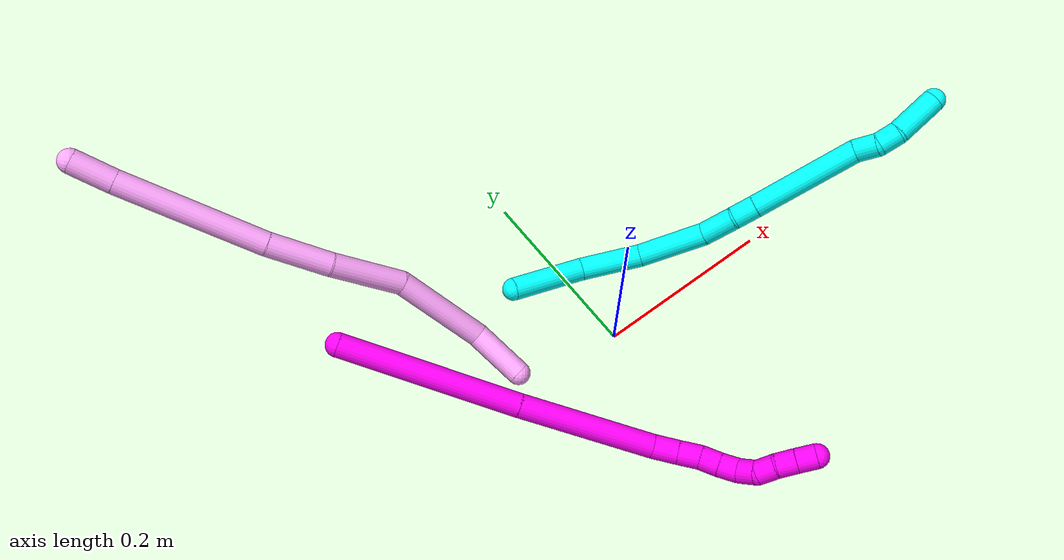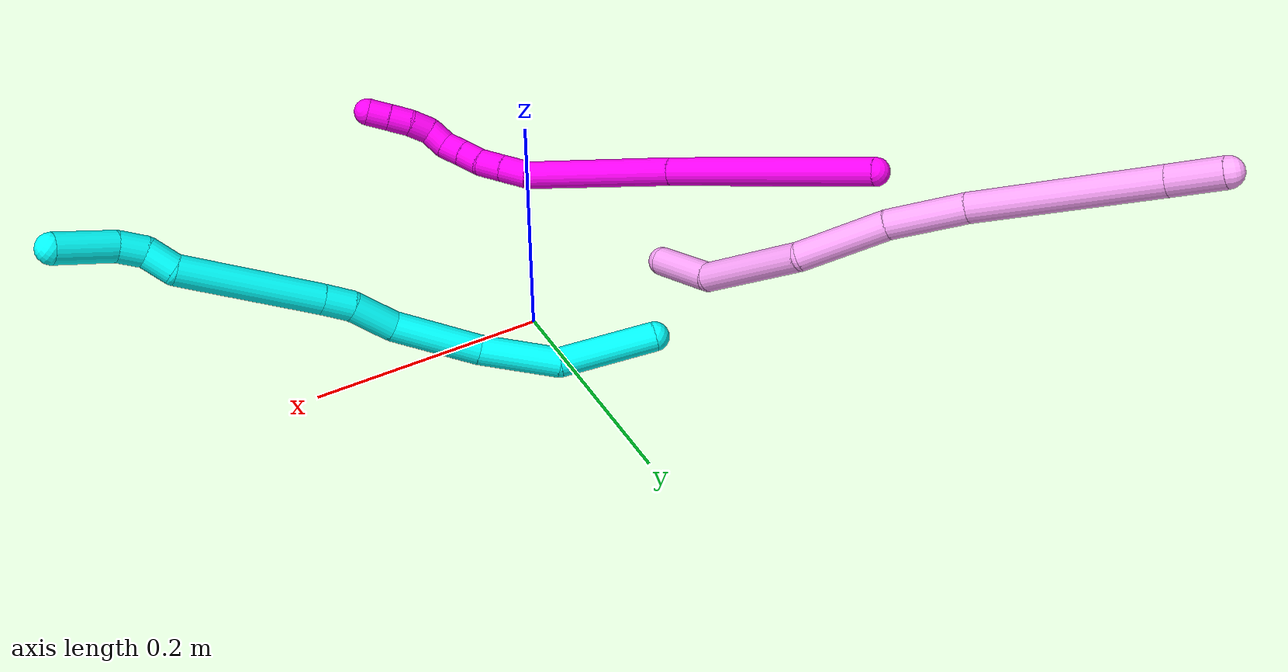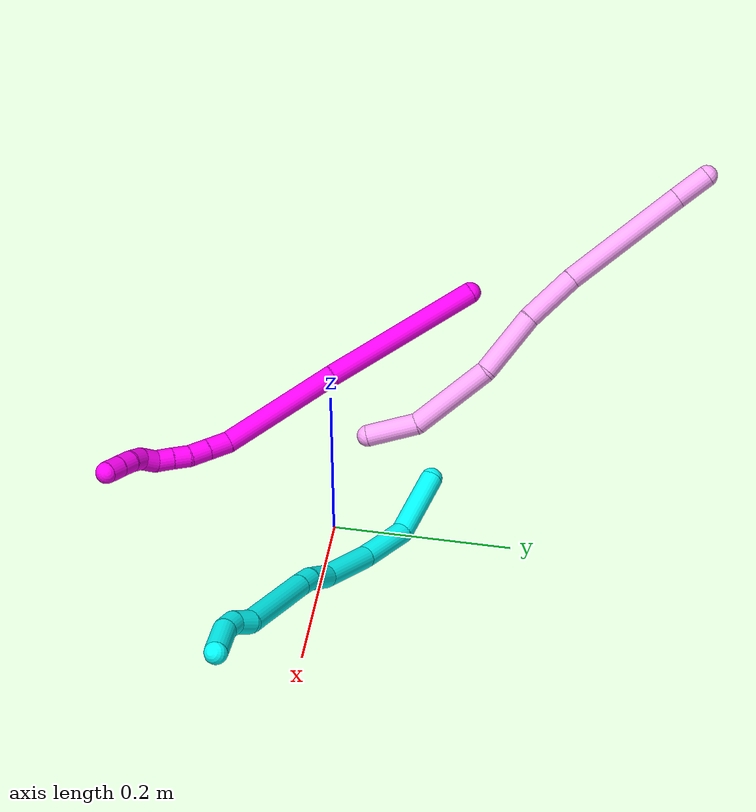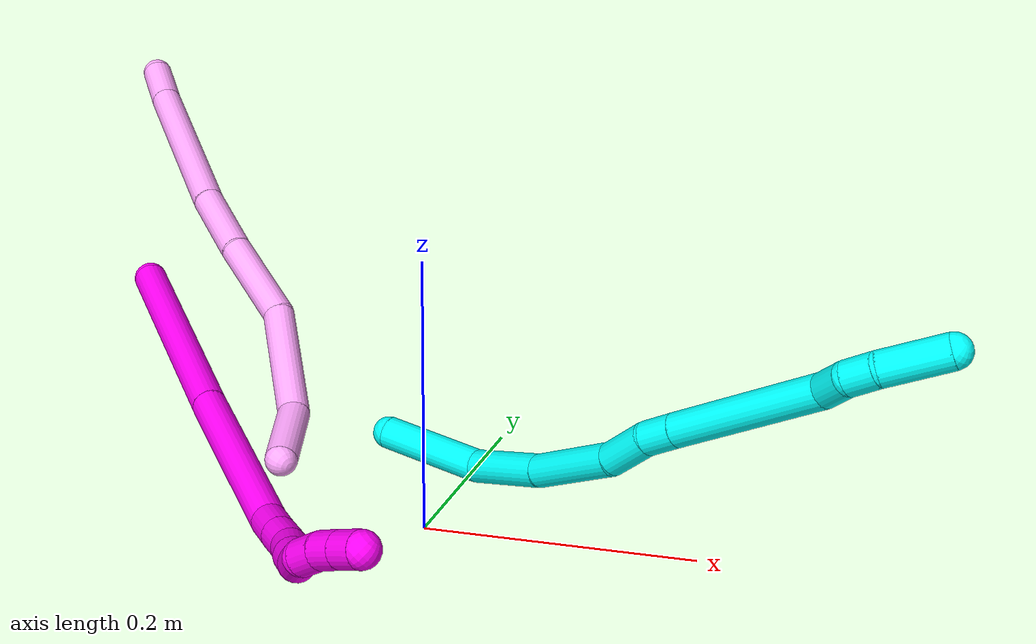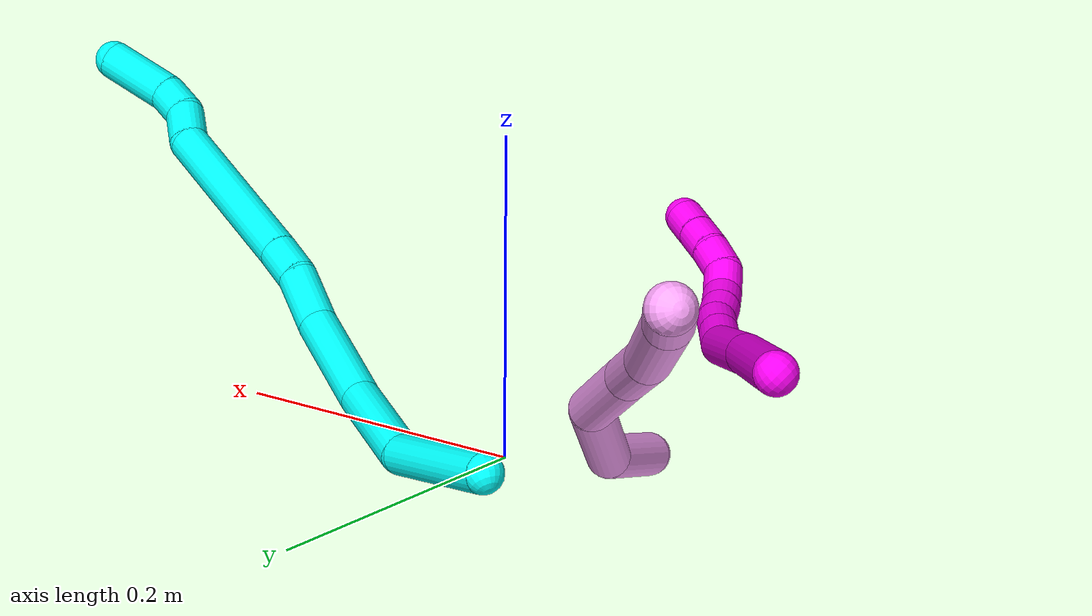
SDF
<sdf version="1.7">
 <world name="default">
  <model name="3">
   <static>0</static>
   <link name="3">
    <collision name="collision-cylinder-e_1_1_4">
     <pose>0.031572 -0.008152 0.024645 0.319455 0.882654 0.151915</pose>
     <geometry><cylinder><radius>0.0125</radius><length>0.081747</length></cylinder></geometry>
     <surface>
      <friction><ode><mu>1.16</mu><mu2>1.16</mu2><slip1>0</slip1><slip2>0</slip2></ode></friction>
      <contact><ode><kp>1e+06</kp><kd>1</kd><max_vel>0</max_vel><min_depth>0.001</min_depth></ode></contact>
     </surface>
    </collision>
    <visual name="visual-cylinder-e_1_1_4">
     <pose>0.031572 -0.008152 0.024645 0.319455 0.882654 0.151915</pose>
     <geometry><cylinder><radius>0.0125</radius><length>0.081747</length></cylinder></geometry>
     <material><ambient>0.003922 1 0.996078 1</ambient></material>
    </visual>
    <collision name="collision-cylinder-e_2_4_5">
     <pose>0.077993 -0.026157 0.077841 0.332303 0.456971 0.077955</pose>
     <geometry><cylinder><radius>0.0125</radius><length>0.067313</length></cylinder></geometry>
     <surface>
      <friction><ode><mu>1.16</mu><mu2>1.16</mu2><slip1>0</slip1><slip2>0</slip2></ode></friction>
      <contact><ode><kp>1e+06</kp><kd>1</kd><max_vel>0</max_vel><min_depth>0.001</min_depth></ode></contact>
     </surface>
    </collision>
    <visual name="visual-cylinder-e_2_4_5">
     <pose>0.077993 -0.026157 0.077841 0.332303 0.456971 0.077955</pose>
     <geometry><cylinder><radius>0.0125</radius><length>0.067313</length></cylinder></geometry>
     <material><ambient>0.003922 1 0.996078 1</ambient></material>
    </visual>
    <collision name="collision-cylinder-e_3_5_6">
     <pose>0.104804 -0.04343 0.140464 0.21441 0.330417 0.035882</pose>
     <geometry><cylinder><radius>0.0125</radius><length>0.073729</length></cylinder></geometry>
     <surface>
      <friction><ode><mu>1.16</mu><mu2>1.16</mu2><slip1>0</slip1><slip2>0</slip2></ode></friction>
      <contact><ode><kp>1e+06</kp><kd>1</kd><max_vel>0</max_vel><min_depth>0.001</min_depth></ode></contact>
     </surface>
    </collision>
    <visual name="visual-cylinder-e_3_5_6">
     <pose>0.104804 -0.04343 0.140464 0.21441 0.330417 0.035882</pose>
     <geometry><cylinder><radius>0.0125</radius><length>0.073729</length></cylinder></geometry>
     <material><ambient>0.003922 1 0.996078 1</ambient></material>
    </visual>
    <collision name="collision-cylinder-e_4_6_7">
     <pose>0.118986 -0.051714 0.19339 0.045854 0.117169 0.00269</pose>
     <geometry><cylinder><radius>0.0125</radius><length>0.03801</length></cylinder></geometry>
     <surface>
      <friction><ode><mu>1.16</mu><mu2>1.16</mu2><slip1>0</slip1><slip2>0</slip2></ode></friction>
      <contact><ode><kp>1e+06</kp><kd>1</kd><max_vel>0</max_vel><min_depth>0.001</min_depth></ode></contact>
     </surface>
    </collision>
    <visual name="visual-cylinder-e_4_6_7">
     <pose>0.118986 -0.051714 0.19339 0.045854 0.117169 0.00269</pose>
     <geometry><cylinder><radius>0.0125</radius><length>0.03801</length></cylinder></geometry>
     <material><ambient>0.003922 1 0.996078 1</ambient></material>
    </visual>
    <collision name="collision-cylinder-e_5_7_8">
     <pose>0.125436 -0.053005 0.224115 0.035846 0.34202 0.006191</pose>
     <geometry><cylinder><radius>0.0125</radius><length>0.025216</length></cylinder></geometry>
     <surface>
      <friction><ode><mu>1.16</mu><mu2>1.16</mu2><slip1>0</slip1><slip2>0</slip2></ode></friction>
      <contact><ode><kp>1e+06</kp><kd>1</kd><max_vel>0</max_vel><min_depth>0.001</min_depth></ode></contact>
     </surface>
    </collision>
    <visual name="visual-cylinder-e_5_7_8">
     <pose>0.125436 -0.053005 0.224115 0.035846 0.34202 0.006191</pose>
     <geometry><cylinder><radius>0.0125</radius><length>0.025216</length></cylinder></geometry>
     <material><ambient>0.003922 1 0.996078 1</ambient></material>
    </visual>
    <collision name="collision-cylinder-e_6_8_9">
     <pose>0.150831 -0.054583 0.290786 0.021025 0.368515 0.003919</pose>
     <geometry><cylinder><radius>0.0125</radius><length>0.117515</length></cylinder></geometry>
     <surface>
      <friction><ode><mu>1.16</mu><mu2>1.16</mu2><slip1>0</slip1><slip2>0</slip2></ode></friction>
      <contact><ode><kp>1e+06</kp><kd>1</kd><max_vel>0</max_vel><min_depth>0.001</min_depth></ode></contact>
     </surface>
    </collision>
    <visual name="visual-cylinder-e_6_8_9">
     <pose>0.150831 -0.054583 0.290786 0.021025 0.368515 0.003919</pose>
     <geometry><cylinder><radius>0.0125</radius><length>0.117515</length></cylinder></geometry>
     <material><ambient>0.003922 1 0.996078 1</ambient></material>
    </visual>
    <collision name="collision-cylinder-e_7_9_10">
     <pose>0.172494 -0.059099 0.357721 0.270379 0.039473 0.00537</pose>
     <geometry><cylinder><radius>0.0125</radius><length>0.025204</length></cylinder></geometry>
     <surface>
      <friction><ode><mu>1.16</mu><mu2>1.16</mu2><slip1>0</slip1><slip2>0</slip2></ode></friction>
      <contact><ode><kp>1e+06</kp><kd>1</kd><max_vel>0</max_vel><min_depth>0.001</min_depth></ode></contact>
     </surface>
    </collision>
    <visual name="visual-cylinder-e_7_9_10">
     <pose>0.172494 -0.059099 0.357721 0.270379 0.039473 0.00537</pose>
     <geometry><cylinder><radius>0.0125</radius><length>0.025204</length></cylinder></geometry>
     <material><ambient>0.003922 1 0.996078 1</ambient></material>
    </visual>
    <collision name="collision-cylinder-e_8_10_11">
     <pose>0.177081 -0.062178 0.380353 -0.027027 0.371299 -0.005076</pose>
     <geometry><cylinder><radius>0.0125</radius><length>0.022539</length></cylinder></geometry>
     <surface>
      <friction><ode><mu>1.16</mu><mu2>1.16</mu2><slip1>0</slip1><slip2>0</slip2></ode></friction>
      <contact><ode><kp>1e+06</kp><kd>1</kd><max_vel>0</max_vel><min_depth>0.001</min_depth></ode></contact>
     </surface>
    </collision>
    <visual name="visual-cylinder-e_8_10_11">
     <pose>0.177081 -0.062178 0.380353 -0.027027 0.371299 -0.005076</pose>
     <geometry><cylinder><radius>0.0125</radius><length>0.022539</length></cylinder></geometry>
     <material><ambient>0.003922 1 0.996078 1</ambient></material>
    </visual>
    <collision name="collision-cylinder-e_9_11_2">
     <pose>0.193591 -0.056417 0.411083 -0.264384 0.534991 -0.072851</pose>
     <geometry><cylinder><radius>0.0125</radius><length>0.048729</length></cylinder></geometry>
     <surface>
      <friction><ode><mu>1.16</mu><mu2>1.16</mu2><slip1>0</slip1><slip2>0</slip2></ode></friction>
      <contact><ode><kp>1e+06</kp><kd>1</kd><max_vel>0</max_vel><min_depth>0.001</min_depth></ode></contact>
     </surface>
    </collision>
    <visual name="visual-cylinder-e_9_11_2">
     <pose>0.193591 -0.056417 0.411083 -0.264384 0.534991 -0.072851</pose>
     <geometry><cylinder><radius>0.0125</radius><length>0.048729</length></cylinder></geometry>
     <material><ambient>0.003922 1 0.996078 1</ambient></material>
    </visual>
    <collision name="collision-sphere-2">
     <pose>0.206013 -0.05094 0.431315 0 -0 0</pose>
     <geometry><sphere><radius>0.0125</radius></sphere></geometry>
     <surface>
      <friction><ode><mu>1.16</mu><mu2>1.16</mu2><slip1>0</slip1><slip2>0</slip2></ode></friction>
      <contact><ode><kp>1e+06</kp><kd>1</kd><max_vel>0</max_vel><min_depth>0.001</min_depth></ode></contact>
     </surface>
    </collision>
    <visual name="visual-sphere-2">
     <pose>0.206013 -0.05094 0.431315 0 -0 0</pose>
     <geometry><sphere><radius>0.0125</radius></sphere></geometry>
     <material><ambient>0.003922 1 0.996078 1</ambient></material>
    </visual>
    <collision name="collision-sphere-11">
     <pose>0.181169 -0.061894 0.390851 0 -0 0</pose>
     <geometry><sphere><radius>0.0125</radius></sphere></geometry>
     <surface>
      <friction><ode><mu>1.16</mu><mu2>1.16</mu2><slip1>0</slip1><slip2>0</slip2></ode></friction>
      <contact><ode><kp>1e+06</kp><kd>1</kd><max_vel>0</max_vel><min_depth>0.001</min_depth></ode></contact>
     </surface>
    </collision>
    <visual name="visual-sphere-11">
     <pose>0.181169 -0.061894 0.390851 0 -0 0</pose>
     <geometry><sphere><radius>0.0125</radius></sphere></geometry>
     <material><ambient>0.003922 1 0.996078 1</ambient></material>
    </visual>
    <collision name="collision-sphere-10">
     <pose>0.172992 -0.062462 0.369855 0 -0 0</pose>
     <geometry><sphere><radius>0.0125</radius></sphere></geometry>
     <surface>
      <friction><ode><mu>1.16</mu><mu2>1.16</mu2><slip1>0</slip1><slip2>0</slip2></ode></friction>
      <contact><ode><kp>1e+06</kp><kd>1</kd><max_vel>0</max_vel><min_depth>0.001</min_depth></ode></contact>
     </surface>
    </collision>
    <visual name="visual-sphere-10">
     <pose>0.172992 -0.062462 0.369855 0 -0 0</pose>
     <geometry><sphere><radius>0.0125</radius></sphere></geometry>
     <material><ambient>0.003922 1 0.996078 1</ambient></material>
    </visual>
    <collision name="collision-sphere-9">
     <pose>0.171997 -0.055735 0.345586 0 -0 0</pose>
     <geometry><sphere><radius>0.0125</radius></sphere></geometry>
     <surface>
      <friction><ode><mu>1.16</mu><mu2>1.16</mu2><slip1>0</slip1><slip2>0</slip2></ode></friction>
      <contact><ode><kp>1e+06</kp><kd>1</kd><max_vel>0</max_vel><min_depth>0.001</min_depth></ode></contact>
     </surface>
    </collision>
    <visual name="visual-sphere-9">
     <pose>0.171997 -0.055735 0.345586 0 -0 0</pose>
     <geometry><sphere><radius>0.0125</radius></sphere></geometry>
     <material><ambient>0.003922 1 0.996078 1</ambient></material>
    </visual>
    <collision name="collision-sphere-4">
     <pose>0.063143 -0.016305 0.049291 0 -0 0</pose>
     <geometry><sphere><radius>0.0125</radius></sphere></geometry>
     <surface>
      <friction><ode><mu>1.16</mu><mu2>1.16</mu2><slip1>0</slip1><slip2>0</slip2></ode></friction>
      <contact><ode><kp>1e+06</kp><kd>1</kd><max_vel>0</max_vel><min_depth>0.001</min_depth></ode></contact>
     </surface>
    </collision>
    <visual name="visual-sphere-4">
     <pose>0.063143 -0.016305 0.049291 0 -0 0</pose>
     <geometry><sphere><radius>0.0125</radius></sphere></geometry>
     <material><ambient>0.003922 1 0.996078 1</ambient></material>
    </visual>
    <collision name="collision-sphere-1">
     <geometry><sphere><radius>0.0125</radius></sphere></geometry>
     <surface>
      <friction><ode><mu>1.16</mu><mu2>1.16</mu2><slip1>0</slip1><slip2>0</slip2></ode></friction>
      <contact><ode><kp>1e+06</kp><kd>1</kd><max_vel>0</max_vel><min_depth>0.001</min_depth></ode></contact>
     </surface>
    </collision>
    <visual name="visual-sphere-1">
     <geometry><sphere><radius>0.0125</radius></sphere></geometry>
     <material><ambient>0.003922 1 0.996078 1</ambient></material>
    </visual>
    <collision name="collision-sphere-8">
     <pose>0.129665 -0.053431 0.235985 0 -0 0</pose>
     <geometry><sphere><radius>0.0125</radius></sphere></geometry>
     <surface>
      <friction><ode><mu>1.16</mu><mu2>1.16</mu2><slip1>0</slip1><slip2>0</slip2></ode></friction>
      <contact><ode><kp>1e+06</kp><kd>1</kd><max_vel>0</max_vel><min_depth>0.001</min_depth></ode></contact>
     </surface>
    </collision>
    <visual name="visual-sphere-8">
     <pose>0.129665 -0.053431 0.235985 0 -0 0</pose>
     <geometry><sphere><radius>0.0125</radius></sphere></geometry>
     <material><ambient>0.003922 1 0.996078 1</ambient></material>
    </visual>
    <collision name="collision-sphere-5">
     <pose>0.092844 -0.03601 0.106392 0 -0 0</pose>
     <geometry><sphere><radius>0.0125</radius></sphere></geometry>
     <surface>
      <friction><ode><mu>1.16</mu><mu2>1.16</mu2><slip1>0</slip1><slip2>0</slip2></ode></friction>
      <contact><ode><kp>1e+06</kp><kd>1</kd><max_vel>0</max_vel><min_depth>0.001</min_depth></ode></contact>
     </surface>
    </collision>
    <visual name="visual-sphere-5">
     <pose>0.092844 -0.03601 0.106392 0 -0 0</pose>
     <geometry><sphere><radius>0.0125</radius></sphere></geometry>
     <material><ambient>0.003922 1 0.996078 1</ambient></material>
    </visual>
    <collision name="collision-sphere-6">
     <pose>0.116764 -0.050849 0.174536 0 -0 0</pose>
     <geometry><sphere><radius>0.0125</radius></sphere></geometry>
     <surface>
      <friction><ode><mu>1.16</mu><mu2>1.16</mu2><slip1>0</slip1><slip2>0</slip2></ode></friction>
      <contact><ode><kp>1e+06</kp><kd>1</kd><max_vel>0</max_vel><min_depth>0.001</min_depth></ode></contact>
     </surface>
    </collision>
    <visual name="visual-sphere-6">
     <pose>0.116764 -0.050849 0.174536 0 -0 0</pose>
     <geometry><sphere><radius>0.0125</radius></sphere></geometry>
     <material><ambient>0.003922 1 0.996078 1</ambient></material>
    </visual>
    <collision name="collision-sphere-7">
     <pose>0.121207 -0.052579 0.212245 0 -0 0</pose>
     <geometry><sphere><radius>0.0125</radius></sphere></geometry>
     <surface>
      <friction><ode><mu>1.16</mu><mu2>1.16</mu2><slip1>0</slip1><slip2>0</slip2></ode></friction>
      <contact><ode><kp>1e+06</kp><kd>1</kd><max_vel>0</max_vel><min_depth>0.001</min_depth></ode></contact>
     </surface>
    </collision>
    <visual name="visual-sphere-7">
     <pose>0.121207 -0.052579 0.212245 0 -0 0</pose>
     <geometry><sphere><radius>0.0125</radius></sphere></geometry>
     <material><ambient>0.003922 1 0.996078 1</ambient></material>
    </visual>
    <inertial>
     <pose>0.117481 -0.041972 0.204809 0 -0 0</pose>
     <mass>0.5</mass>
     <inertia><ixx>0.000266</ixx><ixy>0</ixy><ixz>0</ixz><iyy>0.000277</iyy><iyz>0</iyz><izz>-6e-05</izz></inertia>
    </inertial>
   </link>
   <pose>-0.062296 0.100604 0.031944 0.449055 0.687224 0.198277</pose>
  </model>
  <model name="4">
   <static>0</static>
   <link name="4">
    <collision name="collision-cylinder-e_1_1_4">
     <pose>-0.002005 0.020645 0.021271 -0.770472 -0.067534 0.027393</pose>
     <geometry><cylinder><radius>0.0125</radius><length>0.059421</length></cylinder></geometry>
     <surface>
      <friction><ode><mu>1.16</mu><mu2>1.16</mu2><slip1>0</slip1><slip2>0</slip2></ode></friction>
      <contact><ode><kp>1e+06</kp><kd>1</kd><max_vel>0</max_vel><min_depth>0.001</min_depth></ode></contact>
     </surface>
    </collision>
    <visual name="visual-cylinder-e_1_1_4">
     <pose>-0.002005 0.020645 0.021271 -0.770472 -0.067534 0.027393</pose>
     <geometry><cylinder><radius>0.0125</radius><length>0.059421</length></cylinder></geometry>
     <material><ambient>1 0.65098 0.996078 1</ambient></material>
    </visual>
    <collision name="collision-cylinder-e_2_4_5">
     <pose>0.008815 0.065106 0.084631 -0.514916 0.259232 -0.068614</pose>
     <geometry><cylinder><radius>0.0125</radius><length>0.100062</length></cylinder></geometry>
     <surface>
      <friction><ode><mu>1.16</mu><mu2>1.16</mu2><slip1>0</slip1><slip2>0</slip2></ode></friction>
      <contact><ode><kp>1e+06</kp><kd>1</kd><max_vel>0</max_vel><min_depth>0.001</min_depth></ode></contact>
     </surface>
    </collision>
    <visual name="visual-cylinder-e_2_4_5">
     <pose>0.008815 0.065106 0.084631 -0.514916 0.259232 -0.068614</pose>
     <geometry><cylinder><radius>0.0125</radius><length>0.100062</length></cylinder></geometry>
     <material><ambient>1 0.65098 0.996078 1</ambient></material>
    </visual>
    <collision name="collision-cylinder-e_3_5_6">
     <pose>0.031572 0.094783 0.163992 -0.15601 0.257395 -0.02023</pose>
     <geometry><cylinder><radius>0.0125</radius><length>0.078032</length></cylinder></geometry>
     <surface>
      <friction><ode><mu>1.16</mu><mu2>1.16</mu2><slip1>0</slip1><slip2>0</slip2></ode></friction>
      <contact><ode><kp>1e+06</kp><kd>1</kd><max_vel>0</max_vel><min_depth>0.001</min_depth></ode></contact>
     </surface>
    </collision>
    <visual name="visual-cylinder-e_3_5_6">
     <pose>0.031572 0.094783 0.163992 -0.15601 0.257395 -0.02023</pose>
     <geometry><cylinder><radius>0.0125</radius><length>0.078032</length></cylinder></geometry>
     <material><ambient>1 0.65098 0.996078 1</ambient></material>
    </visual>
    <collision name="collision-cylinder-e_4_6_7">
     <pose>0.046343 0.10873 0.233147 -0.24834 0.146069 -0.018263</pose>
     <geometry><cylinder><radius>0.0125</radius><length>0.066489</length></cylinder></geometry>
     <surface>
      <friction><ode><mu>1.16</mu><mu2>1.16</mu2><slip1>0</slip1><slip2>0</slip2></ode></friction>
      <contact><ode><kp>1e+06</kp><kd>1</kd><max_vel>0</max_vel><min_depth>0.001</min_depth></ode></contact>
     </surface>
    </collision>
    <visual name="visual-cylinder-e_4_6_7">
     <pose>0.046343 0.10873 0.233147 -0.24834 0.146069 -0.018263</pose>
     <geometry><cylinder><radius>0.0125</radius><length>0.066489</length></cylinder></geometry>
     <material><ambient>1 0.65098 0.996078 1</ambient></material>
    </visual>
    <collision name="collision-cylinder-e_5_7_8">
     <pose>0.059466 0.142417 0.336589 -0.343578 0.108568 -0.018854</pose>
     <geometry><cylinder><radius>0.0125</radius><length>0.152907</length></cylinder></geometry>
     <surface>
      <friction><ode><mu>1.16</mu><mu2>1.16</mu2><slip1>0</slip1><slip2>0</slip2></ode></friction>
      <contact><ode><kp>1e+06</kp><kd>1</kd><max_vel>0</max_vel><min_depth>0.001</min_depth></ode></contact>
     </surface>
    </collision>
    <visual name="visual-cylinder-e_5_7_8">
     <pose>0.059466 0.142417 0.336589 -0.343578 0.108568 -0.018854</pose>
     <geometry><cylinder><radius>0.0125</radius><length>0.152907</length></cylinder></geometry>
     <material><ambient>1 0.65098 0.996078 1</ambient></material>
    </visual>
    <collision name="collision-cylinder-e_6_8_2">
     <pose>0.07055 0.176134 0.427911 -0.389639 0.130329 -0.025752</pose>
     <geometry><cylinder><radius>0.0125</radius><length>0.043089</length></cylinder></geometry>
     <surface>
      <friction><ode><mu>1.16</mu><mu2>1.16</mu2><slip1>0</slip1><slip2>0</slip2></ode></friction>
      <contact><ode><kp>1e+06</kp><kd>1</kd><max_vel>0</max_vel><min_depth>0.001</min_depth></ode></contact>
     </surface>
    </collision>
    <visual name="visual-cylinder-e_6_8_2">
     <pose>0.07055 0.176134 0.427911 -0.389639 0.130329 -0.025752</pose>
     <geometry><cylinder><radius>0.0125</radius><length>0.043089</length></cylinder></geometry>
     <material><ambient>1 0.65098 0.996078 1</ambient></material>
    </visual>
    <collision name="collision-sphere-2">
     <pose>0.07335 0.184248 0.447672 0 -0 0</pose>
     <geometry><sphere><radius>0.0125</radius></sphere></geometry>
     <surface>
      <friction><ode><mu>1.16</mu><mu2>1.16</mu2><slip1>0</slip1><slip2>0</slip2></ode></friction>
      <contact><ode><kp>1e+06</kp><kd>1</kd><max_vel>0</max_vel><min_depth>0.001</min_depth></ode></contact>
     </surface>
    </collision>
    <visual name="visual-sphere-2">
     <pose>0.07335 0.184248 0.447672 0 -0 0</pose>
     <geometry><sphere><radius>0.0125</radius></sphere></geometry>
     <material><ambient>1 0.65098 0.996078 1</ambient></material>
    </visual>
    <collision name="collision-sphere-4">
     <pose>-0.00401 0.041291 0.042542 0 -0 0</pose>
     <geometry><sphere><radius>0.0125</radius></sphere></geometry>
     <surface>
      <friction><ode><mu>1.16</mu><mu2>1.16</mu2><slip1>0</slip1><slip2>0</slip2></ode></friction>
      <contact><ode><kp>1e+06</kp><kd>1</kd><max_vel>0</max_vel><min_depth>0.001</min_depth></ode></contact>
     </surface>
    </collision>
    <visual name="visual-sphere-4">
     <pose>-0.00401 0.041291 0.042542 0 -0 0</pose>
     <geometry><sphere><radius>0.0125</radius></sphere></geometry>
     <material><ambient>1 0.65098 0.996078 1</ambient></material>
    </visual>
    <collision name="collision-sphere-1">
     <geometry><sphere><radius>0.0125</radius></sphere></geometry>
     <surface>
      <friction><ode><mu>1.16</mu><mu2>1.16</mu2><slip1>0</slip1><slip2>0</slip2></ode></friction>
      <contact><ode><kp>1e+06</kp><kd>1</kd><max_vel>0</max_vel><min_depth>0.001</min_depth></ode></contact>
     </surface>
    </collision>
    <visual name="visual-sphere-1">
     <geometry><sphere><radius>0.0125</radius></sphere></geometry>
     <material><ambient>1 0.65098 0.996078 1</ambient></material>
    </visual>
    <collision name="collision-sphere-8">
     <pose>0.06775 0.168019 0.40815 0 -0 0</pose>
     <geometry><sphere><radius>0.0125</radius></sphere></geometry>
     <surface>
      <friction><ode><mu>1.16</mu><mu2>1.16</mu2><slip1>0</slip1><slip2>0</slip2></ode></friction>
      <contact><ode><kp>1e+06</kp><kd>1</kd><max_vel>0</max_vel><min_depth>0.001</min_depth></ode></contact>
     </surface>
    </collision>
    <visual name="visual-sphere-8">
     <pose>0.06775 0.168019 0.40815 0 -0 0</pose>
     <geometry><sphere><radius>0.0125</radius></sphere></geometry>
     <material><ambient>1 0.65098 0.996078 1</ambient></material>
    </visual>
    <collision name="collision-sphere-5">
     <pose>0.02164 0.088921 0.12672 0 -0 0</pose>
     <geometry><sphere><radius>0.0125</radius></sphere></geometry>
     <surface>
      <friction><ode><mu>1.16</mu><mu2>1.16</mu2><slip1>0</slip1><slip2>0</slip2></ode></friction>
      <contact><ode><kp>1e+06</kp><kd>1</kd><max_vel>0</max_vel><min_depth>0.001</min_depth></ode></contact>
     </surface>
    </collision>
    <visual name="visual-sphere-5">
     <pose>0.02164 0.088921 0.12672 0 -0 0</pose>
     <geometry><sphere><radius>0.0125</radius></sphere></geometry>
     <material><ambient>1 0.65098 0.996078 1</ambient></material>
    </visual>
    <collision name="collision-sphere-6">
     <pose>0.041504 0.100646 0.201265 0 -0 0</pose>
     <geometry><sphere><radius>0.0125</radius></sphere></geometry>
     <surface>
      <friction><ode><mu>1.16</mu><mu2>1.16</mu2><slip1>0</slip1><slip2>0</slip2></ode></friction>
      <contact><ode><kp>1e+06</kp><kd>1</kd><max_vel>0</max_vel><min_depth>0.001</min_depth></ode></contact>
     </surface>
    </collision>
    <visual name="visual-sphere-6">
     <pose>0.041504 0.100646 0.201265 0 -0 0</pose>
     <geometry><sphere><radius>0.0125</radius></sphere></geometry>
     <material><ambient>1 0.65098 0.996078 1</ambient></material>
    </visual>
    <collision name="collision-sphere-7">
     <pose>0.051182 0.116815 0.265028 0 -0 0</pose>
     <geometry><sphere><radius>0.0125</radius></sphere></geometry>
     <surface>
      <friction><ode><mu>1.16</mu><mu2>1.16</mu2><slip1>0</slip1><slip2>0</slip2></ode></friction>
      <contact><ode><kp>1e+06</kp><kd>1</kd><max_vel>0</max_vel><min_depth>0.001</min_depth></ode></contact>
     </surface>
    </collision>
    <visual name="visual-sphere-7">
     <pose>0.051182 0.116815 0.265028 0 -0 0</pose>
     <geometry><sphere><radius>0.0125</radius></sphere></geometry>
     <material><ambient>1 0.65098 0.996078 1</ambient></material>
    </visual>
    <inertial>
     <pose>0.036881 0.103466 0.215871 0 -0 0</pose>
     <mass>0.5</mass>
     <inertia>
      <ixx>0.000476</ixx>
      <ixy>0</ixy>
      <ixz>0</ixz>
      <iyy>0.000455</iyy>
      <iyz>0</iyz>
      <izz>-0.000208</izz>
     </inertia>
    </inertial>
   </link>
   <pose>-0.118511 0.01774 0.033125 0.788536 -1.22488 -1.37618</pose>
  </model>
  <model name="10">
   <static>0</static>
   <link name="10">
    <collision name="collision-cylinder-e_1_1_4">
     <pose>0.091506 -0.021646 -0.001994 1.66266 1.33756 1.4279</pose>
     <geometry><cylinder><radius>0.0125</radius><length>0.188105</length></cylinder></geometry>
     <surface>
      <friction><ode><mu>1.16</mu><mu2>1.16</mu2><slip1>0</slip1><slip2>0</slip2></ode></friction>
      <contact><ode><kp>1e+06</kp><kd>1</kd><max_vel>0</max_vel><min_depth>0.001</min_depth></ode></contact>
     </surface>
    </collision>
    <visual name="visual-cylinder-e_1_1_4">
     <pose>0.091506 -0.021646 -0.001994 1.66266 1.33756 1.4279</pose>
     <geometry><cylinder><radius>0.0125</radius><length>0.188105</length></cylinder></geometry>
     <material><ambient>1 0 0.964706 1</ambient></material>
    </visual>
    <collision name="collision-cylinder-e_2_4_5">
     <pose>0.252749 -0.057656 -0.004463 1.60381 1.36756 1.4</pose>
     <geometry><cylinder><radius>0.0125</radius><length>0.142405</length></cylinder></geometry>
     <surface>
      <friction><ode><mu>1.16</mu><mu2>1.16</mu2><slip1>0</slip1><slip2>0</slip2></ode></friction>
      <contact><ode><kp>1e+06</kp><kd>1</kd><max_vel>0</max_vel><min_depth>0.001</min_depth></ode></contact>
     </surface>
    </collision>
    <visual name="visual-cylinder-e_2_4_5">
     <pose>0.252749 -0.057656 -0.004463 1.60381 1.36756 1.4</pose>
     <geometry><cylinder><radius>0.0125</radius><length>0.142405</length></cylinder></geometry>
     <material><ambient>1 0 0.964706 1</ambient></material>
    </visual>
    <collision name="collision-cylinder-e_3_5_6">
     <pose>0.334213 -0.077459 -0.002852 1.20481 1.10976 0.805849</pose>
     <geometry><cylinder><radius>0.0125</radius><length>0.026188</length></cylinder></geometry>
     <surface>
      <friction><ode><mu>1.16</mu><mu2>1.16</mu2><slip1>0</slip1><slip2>0</slip2></ode></friction>
      <contact><ode><kp>1e+06</kp><kd>1</kd><max_vel>0</max_vel><min_depth>0.001</min_depth></ode></contact>
     </surface>
    </collision>
    <visual name="visual-cylinder-e_3_5_6">
     <pose>0.334213 -0.077459 -0.002852 1.20481 1.10976 0.805849</pose>
     <geometry><cylinder><radius>0.0125</radius><length>0.026188</length></cylinder></geometry>
     <material><ambient>1 0 0.964706 1</ambient></material>
    </visual>
    <collision name="collision-cylinder-e_4_6_7">
     <pose>0.35623 -0.087732 0.001363 1.15565 1.09654 0.757965</pose>
     <geometry><cylinder><radius>0.0125</radius><length>0.023134</length></cylinder></geometry>
     <surface>
      <friction><ode><mu>1.16</mu><mu2>1.16</mu2><slip1>0</slip1><slip2>0</slip2></ode></friction>
      <contact><ode><kp>1e+06</kp><kd>1</kd><max_vel>0</max_vel><min_depth>0.001</min_depth></ode></contact>
     </surface>
    </collision>
    <visual name="visual-cylinder-e_4_6_7">
     <pose>0.35623 -0.087732 0.001363 1.15565 1.09654 0.757965</pose>
     <geometry><cylinder><radius>0.0125</radius><length>0.023134</length></cylinder></geometry>
     <material><ambient>1 0 0.964706 1</ambient></material>
    </visual>
    <collision name="collision-cylinder-e_5_7_8">
     <pose>0.374578 -0.098512 0.004435 1.41375 0.929184 0.808924</pose>
     <geometry><cylinder><radius>0.0125</radius><length>0.020118</length></cylinder></geometry>
     <surface>
      <friction><ode><mu>1.16</mu><mu2>1.16</mu2><slip1>0</slip1><slip2>0</slip2></ode></friction>
      <contact><ode><kp>1e+06</kp><kd>1</kd><max_vel>0</max_vel><min_depth>0.001</min_depth></ode></contact>
     </surface>
    </collision>
    <visual name="visual-cylinder-e_5_7_8">
     <pose>0.374578 -0.098512 0.004435 1.41375 0.929184 0.808924</pose>
     <geometry><cylinder><radius>0.0125</radius><length>0.020118</length></cylinder></geometry>
     <material><ambient>1 0 0.964706 1</ambient></material>
    </visual>
    <collision name="collision-cylinder-e_6_8_9">
     <pose>0.390747 -0.110086 0.007056 1.2808 0.94401 0.726996</pose>
     <geometry><cylinder><radius>0.0125</radius><length>0.020027</length></cylinder></geometry>
     <surface>
      <friction><ode><mu>1.16</mu><mu2>1.16</mu2><slip1>0</slip1><slip2>0</slip2></ode></friction>
      <contact><ode><kp>1e+06</kp><kd>1</kd><max_vel>0</max_vel><min_depth>0.001</min_depth></ode></contact>
     </surface>
    </collision>
    <visual name="visual-cylinder-e_6_8_9">
     <pose>0.390747 -0.110086 0.007056 1.2808 0.94401 0.726996</pose>
     <geometry><cylinder><radius>0.0125</radius><length>0.020027</length></cylinder></geometry>
     <material><ambient>1 0 0.964706 1</ambient></material>
    </visual>
    <collision name="collision-cylinder-e_7_9_10">
     <pose>0.404143 -0.122919 0.013231 1.01295 0.556764 0.314476</pose>
     <geometry><cylinder><radius>0.0125</radius><length>0.020005</length></cylinder></geometry>
     <surface>
      <friction><ode><mu>1.16</mu><mu2>1.16</mu2><slip1>0</slip1><slip2>0</slip2></ode></friction>
      <contact><ode><kp>1e+06</kp><kd>1</kd><max_vel>0</max_vel><min_depth>0.001</min_depth></ode></contact>
     </surface>
    </collision>
    <visual name="visual-cylinder-e_7_9_10">
     <pose>0.404143 -0.122919 0.013231 1.01295 0.556764 0.314476</pose>
     <geometry><cylinder><radius>0.0125</radius><length>0.020005</length></cylinder></geometry>
     <material><ambient>1 0 0.964706 1</ambient></material>
    </visual>
    <collision name="collision-cylinder-e_8_10_11">
     <pose>0.41535 -0.133583 0.025006 0.443698 0.633585 0.147625</pose>
     <geometry><cylinder><radius>0.0125</radius><length>0.020003</length></cylinder></geometry>
     <surface>
      <friction><ode><mu>1.16</mu><mu2>1.16</mu2><slip1>0</slip1><slip2>0</slip2></ode></friction>
      <contact><ode><kp>1e+06</kp><kd>1</kd><max_vel>0</max_vel><min_depth>0.001</min_depth></ode></contact>
     </surface>
    </collision>
    <visual name="visual-cylinder-e_8_10_11">
     <pose>0.41535 -0.133583 0.025006 0.443698 0.633585 0.147625</pose>
     <geometry><cylinder><radius>0.0125</radius><length>0.020003</length></cylinder></geometry>
     <material><ambient>1 0 0.964706 1</ambient></material>
    </visual>
    <collision name="collision-cylinder-e_9_11_12">
     <pose>0.428556 -0.139865 0.038536 0.424052 0.815525 0.185441</pose>
     <geometry><cylinder><radius>0.0125</radius><length>0.020009</length></cylinder></geometry>
     <surface>
      <friction><ode><mu>1.16</mu><mu2>1.16</mu2><slip1>0</slip1><slip2>0</slip2></ode></friction>
      <contact><ode><kp>1e+06</kp><kd>1</kd><max_vel>0</max_vel><min_depth>0.001</min_depth></ode></contact>
     </surface>
    </collision>
    <visual name="visual-cylinder-e_9_11_12">
     <pose>0.428556 -0.139865 0.038536 0.424052 0.815525 0.185441</pose>
     <geometry><cylinder><radius>0.0125</radius><length>0.020009</length></cylinder></geometry>
     <material><ambient>1 0 0.964706 1</ambient></material>
    </visual>
    <collision name="collision-cylinder-e_10_12_2">
     <pose>0.44333 -0.145491 0.050795 0.436638 0.846207 0.199142</pose>
     <geometry><cylinder><radius>0.0125</radius><length>0.020006</length></cylinder></geometry>
     <surface>
      <friction><ode><mu>1.16</mu><mu2>1.16</mu2><slip1>0</slip1><slip2>0</slip2></ode></friction>
      <contact><ode><kp>1e+06</kp><kd>1</kd><max_vel>0</max_vel><min_depth>0.001</min_depth></ode></contact>
     </surface>
    </collision>
    <visual name="visual-cylinder-e_10_12_2">
     <pose>0.44333 -0.145491 0.050795 0.436638 0.846207 0.199142</pose>
     <geometry><cylinder><radius>0.0125</radius><length>0.020006</length></cylinder></geometry>
     <material><ambient>1 0 0.964706 1</ambient></material>
    </visual>
    <collision name="collision-sphere-2">
     <pose>0.45082 -0.148295 0.056803 0 -0 0</pose>
     <geometry><sphere><radius>0.0125</radius></sphere></geometry>
     <surface>
      <friction><ode><mu>1.16</mu><mu2>1.16</mu2><slip1>0</slip1><slip2>0</slip2></ode></friction>
      <contact><ode><kp>1e+06</kp><kd>1</kd><max_vel>0</max_vel><min_depth>0.001</min_depth></ode></contact>
     </surface>
    </collision>
    <visual name="visual-sphere-2">
     <pose>0.45082 -0.148295 0.056803 0 -0 0</pose>
     <geometry><sphere><radius>0.0125</radius></sphere></geometry>
     <material><ambient>1 0 0.964706 1</ambient></material>
    </visual>
    <collision name="collision-sphere-12">
     <pose>0.43584 -0.142687 0.044787 0 -0 0</pose>
     <geometry><sphere><radius>0.0125</radius></sphere></geometry>
     <surface>
      <friction><ode><mu>1.16</mu><mu2>1.16</mu2><slip1>0</slip1><slip2>0</slip2></ode></friction>
      <contact><ode><kp>1e+06</kp><kd>1</kd><max_vel>0</max_vel><min_depth>0.001</min_depth></ode></contact>
     </surface>
    </collision>
    <visual name="visual-sphere-12">
     <pose>0.43584 -0.142687 0.044787 0 -0 0</pose>
     <geometry><sphere><radius>0.0125</radius></sphere></geometry>
     <material><ambient>1 0 0.964706 1</ambient></material>
    </visual>
    <collision name="collision-sphere-11">
     <pose>0.421271 -0.137044 0.032286 0 -0 0</pose>
     <geometry><sphere><radius>0.0125</radius></sphere></geometry>
     <surface>
      <friction><ode><mu>1.16</mu><mu2>1.16</mu2><slip1>0</slip1><slip2>0</slip2></ode></friction>
      <contact><ode><kp>1e+06</kp><kd>1</kd><max_vel>0</max_vel><min_depth>0.001</min_depth></ode></contact>
     </surface>
    </collision>
    <visual name="visual-sphere-11">
     <pose>0.421271 -0.137044 0.032286 0 -0 0</pose>
     <geometry><sphere><radius>0.0125</radius></sphere></geometry>
     <material><ambient>1 0 0.964706 1</ambient></material>
    </visual>
    <collision name="collision-sphere-10">
     <pose>0.409429 -0.130123 0.017726 0 -0 0</pose>
     <geometry><sphere><radius>0.0125</radius></sphere></geometry>
     <surface>
      <friction><ode><mu>1.16</mu><mu2>1.16</mu2><slip1>0</slip1><slip2>0</slip2></ode></friction>
      <contact><ode><kp>1e+06</kp><kd>1</kd><max_vel>0</max_vel><min_depth>0.001</min_depth></ode></contact>
     </surface>
    </collision>
    <visual name="visual-sphere-10">
     <pose>0.409429 -0.130123 0.017726 0 -0 0</pose>
     <geometry><sphere><radius>0.0125</radius></sphere></geometry>
     <material><ambient>1 0 0.964706 1</ambient></material>
    </visual>
    <collision name="collision-sphere-9">
     <pose>0.398857 -0.115714 0.008735 0 -0 0</pose>
     <geometry><sphere><radius>0.0125</radius></sphere></geometry>
     <surface>
      <friction><ode><mu>1.16</mu><mu2>1.16</mu2><slip1>0</slip1><slip2>0</slip2></ode></friction>
      <contact><ode><kp>1e+06</kp><kd>1</kd><max_vel>0</max_vel><min_depth>0.001</min_depth></ode></contact>
     </surface>
    </collision>
    <visual name="visual-sphere-9">
     <pose>0.398857 -0.115714 0.008735 0 -0 0</pose>
     <geometry><sphere><radius>0.0125</radius></sphere></geometry>
     <material><ambient>1 0 0.964706 1</ambient></material>
    </visual>
    <collision name="collision-sphere-4">
     <pose>0.183012 -0.043292 -0.003988 0 -0 0</pose>
     <geometry><sphere><radius>0.0125</radius></sphere></geometry>
     <surface>
      <friction><ode><mu>1.16</mu><mu2>1.16</mu2><slip1>0</slip1><slip2>0</slip2></ode></friction>
      <contact><ode><kp>1e+06</kp><kd>1</kd><max_vel>0</max_vel><min_depth>0.001</min_depth></ode></contact>
     </surface>
    </collision>
    <visual name="visual-sphere-4">
     <pose>0.183012 -0.043292 -0.003988 0 -0 0</pose>
     <geometry><sphere><radius>0.0125</radius></sphere></geometry>
     <material><ambient>1 0 0.964706 1</ambient></material>
    </visual>
    <collision name="collision-sphere-1">
     <geometry><sphere><radius>0.0125</radius></sphere></geometry>
     <surface>
      <friction><ode><mu>1.16</mu><mu2>1.16</mu2><slip1>0</slip1><slip2>0</slip2></ode></friction>
      <contact><ode><kp>1e+06</kp><kd>1</kd><max_vel>0</max_vel><min_depth>0.001</min_depth></ode></contact>
     </surface>
    </collision>
    <visual name="visual-sphere-1">
     <geometry><sphere><radius>0.0125</radius></sphere></geometry>
     <material><ambient>1 0 0.964706 1</ambient></material>
    </visual>
    <collision name="collision-sphere-8">
     <pose>0.382637 -0.104458 0.005376 0 -0 0</pose>
     <geometry><sphere><radius>0.0125</radius></sphere></geometry>
     <surface>
      <friction><ode><mu>1.16</mu><mu2>1.16</mu2><slip1>0</slip1><slip2>0</slip2></ode></friction>
      <contact><ode><kp>1e+06</kp><kd>1</kd><max_vel>0</max_vel><min_depth>0.001</min_depth></ode></contact>
     </surface>
    </collision>
    <visual name="visual-sphere-8">
     <pose>0.382637 -0.104458 0.005376 0 -0 0</pose>
     <geometry><sphere><radius>0.0125</radius></sphere></geometry>
     <material><ambient>1 0 0.964706 1</ambient></material>
    </visual>
    <collision name="collision-sphere-5">
     <pose>0.322486 -0.07202 -0.004937 0 -0 0</pose>
     <geometry><sphere><radius>0.0125</radius></sphere></geometry>
     <surface>
      <friction><ode><mu>1.16</mu><mu2>1.16</mu2><slip1>0</slip1><slip2>0</slip2></ode></friction>
      <contact><ode><kp>1e+06</kp><kd>1</kd><max_vel>0</max_vel><min_depth>0.001</min_depth></ode></contact>
     </surface>
    </collision>
    <visual name="visual-sphere-5">
     <pose>0.322486 -0.07202 -0.004937 0 -0 0</pose>
     <geometry><sphere><radius>0.0125</radius></sphere></geometry>
     <material><ambient>1 0 0.964706 1</ambient></material>
    </visual>
    <collision name="collision-sphere-6">
     <pose>0.345939 -0.082898 -0.000768 0 -0 0</pose>
     <geometry><sphere><radius>0.0125</radius></sphere></geometry>
     <surface>
      <friction><ode><mu>1.16</mu><mu2>1.16</mu2><slip1>0</slip1><slip2>0</slip2></ode></friction>
      <contact><ode><kp>1e+06</kp><kd>1</kd><max_vel>0</max_vel><min_depth>0.001</min_depth></ode></contact>
     </surface>
    </collision>
    <visual name="visual-sphere-6">
     <pose>0.345939 -0.082898 -0.000768 0 -0 0</pose>
     <geometry><sphere><radius>0.0125</radius></sphere></geometry>
     <material><ambient>1 0 0.964706 1</ambient></material>
    </visual>
    <collision name="collision-sphere-7">
     <pose>0.36652 -0.092566 0.003493 0 -0 0</pose>
     <geometry><sphere><radius>0.0125</radius></sphere></geometry>
     <surface>
      <friction><ode><mu>1.16</mu><mu2>1.16</mu2><slip1>0</slip1><slip2>0</slip2></ode></friction>
      <contact><ode><kp>1e+06</kp><kd>1</kd><max_vel>0</max_vel><min_depth>0.001</min_depth></ode></contact>
     </surface>
    </collision>
    <visual name="visual-sphere-7">
     <pose>0.36652 -0.092566 0.003493 0 -0 0</pose>
     <geometry><sphere><radius>0.0125</radius></sphere></geometry>
     <material><ambient>1 0 0.964706 1</ambient></material>
    </visual>
    <inertial>
     <pose>0.238795 -0.062735 0.003458 0 -0 0</pose>
     <mass>0.5</mass>
     <inertia>
      <ixx>0.00025</ixx>
      <ixy>0</ixy>
      <ixz>0</ixz>
      <iyy>0.000948</iyy>
      <iyz>0</iyz>
      <izz>-0.000609</izz>
     </inertia>
    </inertial>
   </link>
   <pose>-0.267013 0.113016 0.13594 -0.72085 0.39982 -0.702642</pose>
  </model>
 </world>
</sdf>
